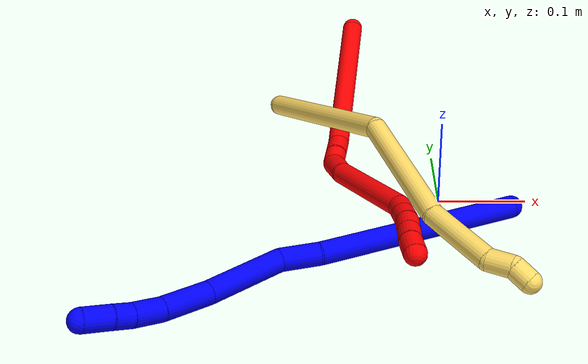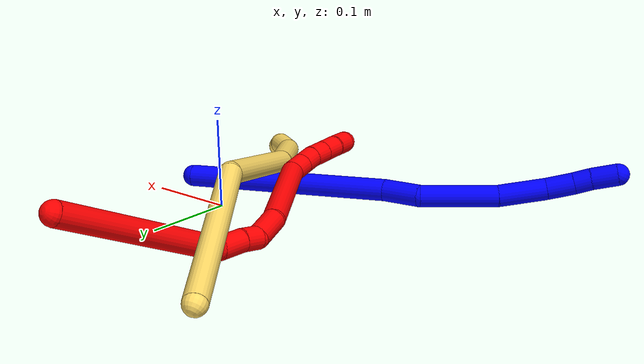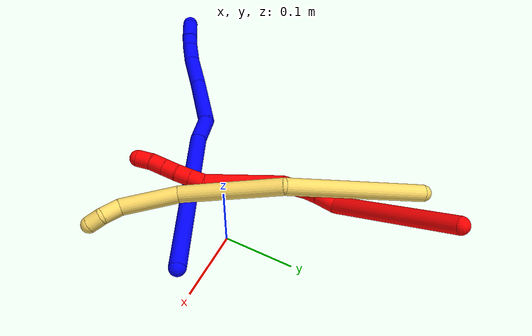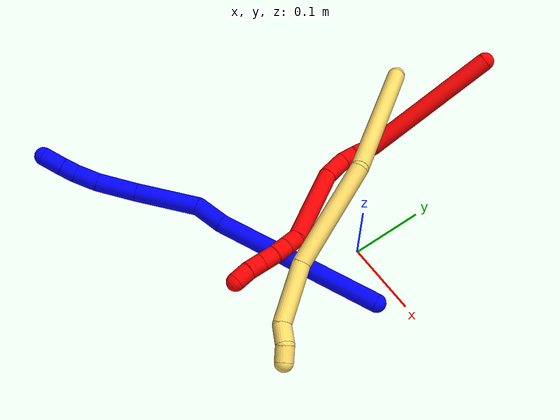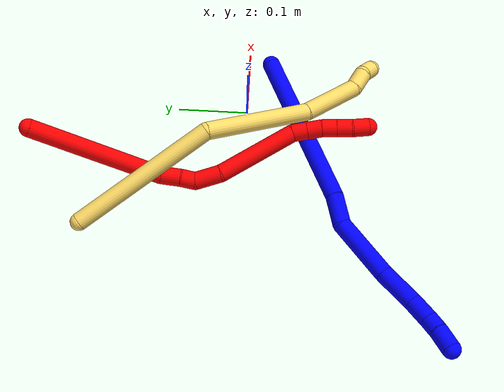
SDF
<sdf version="1.7">
 <world name="default">
  <model name="photoneo_s_sensor">
   <static>1</static>
   <pose>0 0 2 1.57079 1.57079 3.14159</pose>
   <link name="link">
    <inertial><mass>0.1</mass></inertial>
    <sensor name="sensor" type="depth">
     <update_rate>30</update_rate>
     <camera>
      <horizontal_fov>1.22</horizontal_fov>
      <image><width>1920</width><height>1200</height><format>B8G8R8</format></image>
      <clip><near>0.1</near><far>4</far></clip>
      <depth_camera><output>points</output></depth_camera>
     </camera>
     <plugin name="camera_plugin" filename="libgazebo_ros_depth_camera.so">
      <baseline>0.2</baseline>
      <alwaysOn>1</alwaysOn>
      <updateRate>0.0</updateRate>
      <cameraName>camera_ir</cameraName>
      <imageTopicName>/camera/color/image_raw</imageTopicName>
      <cameraInfoTopicName>/camera/color/camera_info</cameraInfoTopicName>
      <depthImageTopicName>/camera/depth/image_raw</depthImageTopicName>
      <depthImageCameraInfoTopicName>/camera/depth/camera_info</depthImageCameraInfoTopicName>
      <pointCloudTopicName>/camera/depth/points</pointCloudTopicName>
      <frameName>fr_optical</frameName>
      <pointCloudCutoff>0.1</pointCloudCutoff>
      <pointCloudCutoffMax>2.0</pointCloudCutoffMax>
      <distortionK1>0</distortionK1>
      <distortionK2>0</distortionK2>
      <distortionK3>0</distortionK3>
      <distortionT1>0</distortionT1>
      <distortionT2>0</distortionT2>
      <CxPrime>0</CxPrime>
      <Cx>0</Cx>
      <Cy>0</Cy>
      <focalLength>0</focalLength>
      <hackBaseline>0</hackBaseline>
     </plugin>
    </sensor>
   </link>
  </model>
  <model name="bin">
   <static>1</static>
   <link name="bottom">
    <collision name="collision-bottom">
     <pose>0 0 -0.01 0 -0 0</pose>
     <geometry><box><size>0.8 0.6 0.02</size></box></geometry>
     <surface>
      <friction><ode><mu>100</mu><mu2>100</mu2></ode></friction>
      <contact><collide_bitmask>65535</collide_bitmask></contact>
     </surface>
    </collision>
   </link>
   <link name="west_wall">
    <collision name="collision-west_wall">
     <pose>-0.41 0 0.1 0 -0 0</pose>
     <geometry><box><size>0.02 0.6 0.2</size></box></geometry>
     <surface>
      <friction><ode><mu>100</mu><mu2>100</mu2></ode></friction>
      <contact><collide_bitmask>65535</collide_bitmask></contact>
     </surface>
    </collision>
   </link>
   <link name="east_wall">
    <collision name="collision-east_wall">
     <pose>0.41 0 0.1 0 -0 0</pose>
     <geometry><box><size>0.02 0.6 0.2</size></box></geometry>
     <surface>
      <friction><ode><mu>100</mu><mu2>100</mu2></ode></friction>
      <contact><collide_bitmask>65535</collide_bitmask></contact>
     </surface>
    </collision>
   </link>
   <link name="south_wall">
    <collision name="collision-south_wall">
     <pose>0 -0.31 0.1 0 -0 0</pose>
     <geometry><box><size>0.8 0.02 0.2</size></box></geometry>
     <surface>
      <friction><ode><mu>100</mu><mu2>100</mu2></ode></friction>
      <contact><collide_bitmask>65535</collide_bitmask></contact>
     </surface>
    </collision>
   </link>
   <link name="north_wall">
    <collision name="collision-north_wall">
     <pose>0 0.31 0.1 0 -0 0</pose>
     <geometry><box><size>0.8 0.02 0.2</size></box></geometry>
     <surface>
      <friction><ode><mu>100</mu><mu2>100</mu2></ode></friction>
      <contact><collide_bitmask>65535</collide_bitmask></contact>
     </surface>
    </collision>
   </link>
  </model>
  <model name="1">
   <static>0</static>
   <link name="1">
    <collision name="collision-cylinder-e_1_1_4">
     <pose>-0.082228 -0.037469 0.073331 0.472373 -0.784665 -0.198524</pose>
     <geometry><cylinder><radius>0.0125</radius><length>0.232747</length></cylinder></geometry>
     <surface>
      <friction><ode><mu>1.16</mu><mu2>1.16</mu2><slip1>0</slip1><slip2>0</slip2></ode></friction>
      <contact><ode><kp>1e+06</kp><kd>1</kd><max_vel>0</max_vel><min_depth>0.001</min_depth></ode></contact>
     </surface>
    </collision>
    <visual name="visual-cylinder-e_1_1_4">
     <pose>-0.082228 -0.037469 0.073331 0.472373 -0.784665 -0.198524</pose>
     <geometry><cylinder><radius>0.0125</radius><length>0.232747</length></cylinder></geometry>
     <material><ambient>0 0 1 1</ambient></material>
    </visual>
    <collision name="collision-cylinder-e_2_4_5">
     <pose>-0.179664 -0.084913 0.157886 0.72654 -0.791733 -0.31511</pose>
     <geometry><cylinder><radius>0.0125</radius><length>0.042745</length></cylinder></geometry>
     <surface>
      <friction><ode><mu>1.16</mu><mu2>1.16</mu2><slip1>0</slip1><slip2>0</slip2></ode></friction>
      <contact><ode><kp>1e+06</kp><kd>1</kd><max_vel>0</max_vel><min_depth>0.001</min_depth></ode></contact>
     </surface>
    </collision>
    <visual name="visual-cylinder-e_2_4_5">
     <pose>-0.179664 -0.084913 0.157886 0.72654 -0.791733 -0.31511</pose>
     <geometry><cylinder><radius>0.0125</radius><length>0.042745</length></cylinder></geometry>
     <material><ambient>0 0 1 1</ambient></material>
    </visual>
    <collision name="collision-cylinder-e_3_5_6">
     <pose>-0.222236 -0.09992 0.20323 0.146435 -0.670713 -0.051116</pose>
     <geometry><cylinder><radius>0.0125</radius><length>0.088051</length></cylinder></geometry>
     <surface>
      <friction><ode><mu>1.16</mu><mu2>1.16</mu2><slip1>0</slip1><slip2>0</slip2></ode></friction>
      <contact><ode><kp>1e+06</kp><kd>1</kd><max_vel>0</max_vel><min_depth>0.001</min_depth></ode></contact>
     </surface>
    </collision>
    <visual name="visual-cylinder-e_3_5_6">
     <pose>-0.222236 -0.09992 0.20323 0.146435 -0.670713 -0.051116</pose>
     <geometry><cylinder><radius>0.0125</radius><length>0.088051</length></cylinder></geometry>
     <material><ambient>0 0 1 1</ambient></material>
    </visual>
    <collision name="collision-cylinder-e_4_6_7">
     <pose>-0.26871 -0.105038 0.257065 0.004344 -0.769812 -0.00176</pose>
     <geometry><cylinder><radius>0.0125</radius><length>0.054914</length></cylinder></geometry>
     <surface>
      <friction><ode><mu>1.16</mu><mu2>1.16</mu2><slip1>0</slip1><slip2>0</slip2></ode></friction>
      <contact><ode><kp>1e+06</kp><kd>1</kd><max_vel>0</max_vel><min_depth>0.001</min_depth></ode></contact>
     </surface>
    </collision>
    <visual name="visual-cylinder-e_4_6_7">
     <pose>-0.26871 -0.105038 0.257065 0.004344 -0.769812 -0.00176</pose>
     <geometry><cylinder><radius>0.0125</radius><length>0.054914</length></cylinder></geometry>
     <material><ambient>0 0 1 1</ambient></material>
    </visual>
    <collision name="collision-cylinder-e_5_7_8">
     <pose>-0.300153 -0.105564 0.286708 0.044278 -0.892513 -0.021188</pose>
     <geometry><cylinder><radius>0.0125</radius><length>0.031678</length></cylinder></geometry>
     <surface>
      <friction><ode><mu>1.16</mu><mu2>1.16</mu2><slip1>0</slip1><slip2>0</slip2></ode></friction>
      <contact><ode><kp>1e+06</kp><kd>1</kd><max_vel>0</max_vel><min_depth>0.001</min_depth></ode></contact>
     </surface>
    </collision>
    <visual name="visual-cylinder-e_5_7_8">
     <pose>-0.300153 -0.105564 0.286708 0.044278 -0.892513 -0.021188</pose>
     <geometry><cylinder><radius>0.0125</radius><length>0.031678</length></cylinder></geometry>
     <material><ambient>0 0 1 1</ambient></material>
    </visual>
    <collision name="collision-cylinder-e_6_8_9">
     <pose>-0.320886 -0.106366 0.302085 0.066419 -0.994394 -0.036053</pose>
     <geometry><cylinder><radius>0.0125</radius><length>0.020036</length></cylinder></geometry>
     <surface>
      <friction><ode><mu>1.16</mu><mu2>1.16</mu2><slip1>0</slip1><slip2>0</slip2></ode></friction>
      <contact><ode><kp>1e+06</kp><kd>1</kd><max_vel>0</max_vel><min_depth>0.001</min_depth></ode></contact>
     </surface>
    </collision>
    <visual name="visual-cylinder-e_6_8_9">
     <pose>-0.320886 -0.106366 0.302085 0.066419 -0.994394 -0.036053</pose>
     <geometry><cylinder><radius>0.0125</radius><length>0.020036</length></cylinder></geometry>
     <material><ambient>0 0 1 1</ambient></material>
    </visual>
    <collision name="collision-cylinder-e_7_9_2">
     <pose>-0.341603 -0.108738 0.315698 0.241291 -0.971853 -0.127889</pose>
     <geometry><cylinder><radius>0.0125</radius><length>0.02983</length></cylinder></geometry>
     <surface>
      <friction><ode><mu>1.16</mu><mu2>1.16</mu2><slip1>0</slip1><slip2>0</slip2></ode></friction>
      <contact><ode><kp>1e+06</kp><kd>1</kd><max_vel>0</max_vel><min_depth>0.001</min_depth></ode></contact>
     </surface>
    </collision>
    <visual name="visual-cylinder-e_7_9_2">
     <pose>-0.341603 -0.108738 0.315698 0.241291 -0.971853 -0.127889</pose>
     <geometry><cylinder><radius>0.0125</radius><length>0.02983</length></cylinder></geometry>
     <material><ambient>0 0 1 1</ambient></material>
    </visual>
    <collision name="collision-sphere-2">
     <pose>-0.353922 -0.110747 0.323862 0 -0 0</pose>
     <geometry><sphere><radius>0.0125</radius></sphere></geometry>
     <surface>
      <friction><ode><mu>1.16</mu><mu2>1.16</mu2><slip1>0</slip1><slip2>0</slip2></ode></friction>
      <contact><ode><kp>1e+06</kp><kd>1</kd><max_vel>0</max_vel><min_depth>0.001</min_depth></ode></contact>
     </surface>
    </collision>
    <visual name="visual-sphere-2">
     <pose>-0.353922 -0.110747 0.323862 0 -0 0</pose>
     <geometry><sphere><radius>0.0125</radius></sphere></geometry>
     <material><ambient>0 0 1 1</ambient></material>
    </visual>
    <collision name="collision-sphere-9">
     <pose>-0.329285 -0.106728 0.307533 0 -0 0</pose>
     <geometry><sphere><radius>0.0125</radius></sphere></geometry>
     <surface>
      <friction><ode><mu>1.16</mu><mu2>1.16</mu2><slip1>0</slip1><slip2>0</slip2></ode></friction>
      <contact><ode><kp>1e+06</kp><kd>1</kd><max_vel>0</max_vel><min_depth>0.001</min_depth></ode></contact>
     </surface>
    </collision>
    <visual name="visual-sphere-9">
     <pose>-0.329285 -0.106728 0.307533 0 -0 0</pose>
     <geometry><sphere><radius>0.0125</radius></sphere></geometry>
     <material><ambient>0 0 1 1</ambient></material>
    </visual>
    <collision name="collision-sphere-4">
     <pose>-0.164456 -0.074938 0.146662 0 -0 0</pose>
     <geometry><sphere><radius>0.0125</radius></sphere></geometry>
     <surface>
      <friction><ode><mu>1.16</mu><mu2>1.16</mu2><slip1>0</slip1><slip2>0</slip2></ode></friction>
      <contact><ode><kp>1e+06</kp><kd>1</kd><max_vel>0</max_vel><min_depth>0.001</min_depth></ode></contact>
     </surface>
    </collision>
    <visual name="visual-sphere-4">
     <pose>-0.164456 -0.074938 0.146662 0 -0 0</pose>
     <geometry><sphere><radius>0.0125</radius></sphere></geometry>
     <material><ambient>0 0 1 1</ambient></material>
    </visual>
    <collision name="collision-sphere-1">
     <geometry><sphere><radius>0.0125</radius></sphere></geometry>
     <surface>
      <friction><ode><mu>1.16</mu><mu2>1.16</mu2><slip1>0</slip1><slip2>0</slip2></ode></friction>
      <contact><ode><kp>1e+06</kp><kd>1</kd><max_vel>0</max_vel><min_depth>0.001</min_depth></ode></contact>
     </surface>
    </collision>
    <visual name="visual-sphere-1">
     <geometry><sphere><radius>0.0125</radius></sphere></geometry>
     <material><ambient>0 0 1 1</ambient></material>
    </visual>
    <collision name="collision-sphere-8">
     <pose>-0.312486 -0.106004 0.296637 0 -0 0</pose>
     <geometry><sphere><radius>0.0125</radius></sphere></geometry>
     <surface>
      <friction><ode><mu>1.16</mu><mu2>1.16</mu2><slip1>0</slip1><slip2>0</slip2></ode></friction>
      <contact><ode><kp>1e+06</kp><kd>1</kd><max_vel>0</max_vel><min_depth>0.001</min_depth></ode></contact>
     </surface>
    </collision>
    <visual name="visual-sphere-8">
     <pose>-0.312486 -0.106004 0.296637 0 -0 0</pose>
     <geometry><sphere><radius>0.0125</radius></sphere></geometry>
     <material><ambient>0 0 1 1</ambient></material>
    </visual>
    <collision name="collision-sphere-5">
     <pose>-0.194872 -0.094888 0.169111 0 -0 0</pose>
     <geometry><sphere><radius>0.0125</radius></sphere></geometry>
     <surface>
      <friction><ode><mu>1.16</mu><mu2>1.16</mu2><slip1>0</slip1><slip2>0</slip2></ode></friction>
      <contact><ode><kp>1e+06</kp><kd>1</kd><max_vel>0</max_vel><min_depth>0.001</min_depth></ode></contact>
     </surface>
    </collision>
    <visual name="visual-sphere-5">
     <pose>-0.194872 -0.094888 0.169111 0 -0 0</pose>
     <geometry><sphere><radius>0.0125</radius></sphere></geometry>
     <material><ambient>0 0 1 1</ambient></material>
    </visual>
    <collision name="collision-sphere-6">
     <pose>-0.2496 -0.104953 0.23735 0 -0 0</pose>
     <geometry><sphere><radius>0.0125</radius></sphere></geometry>
     <surface>
      <friction><ode><mu>1.16</mu><mu2>1.16</mu2><slip1>0</slip1><slip2>0</slip2></ode></friction>
      <contact><ode><kp>1e+06</kp><kd>1</kd><max_vel>0</max_vel><min_depth>0.001</min_depth></ode></contact>
     </surface>
    </collision>
    <visual name="visual-sphere-6">
     <pose>-0.2496 -0.104953 0.23735 0 -0 0</pose>
     <geometry><sphere><radius>0.0125</radius></sphere></geometry>
     <material><ambient>0 0 1 1</ambient></material>
    </visual>
    <collision name="collision-sphere-7">
     <pose>-0.28782 -0.105124 0.27678 0 -0 0</pose>
     <geometry><sphere><radius>0.0125</radius></sphere></geometry>
     <surface>
      <friction><ode><mu>1.16</mu><mu2>1.16</mu2><slip1>0</slip1><slip2>0</slip2></ode></friction>
      <contact><ode><kp>1e+06</kp><kd>1</kd><max_vel>0</max_vel><min_depth>0.001</min_depth></ode></contact>
     </surface>
    </collision>
    <visual name="visual-sphere-7">
     <pose>-0.28782 -0.105124 0.27678 0 -0 0</pose>
     <geometry><sphere><radius>0.0125</radius></sphere></geometry>
     <material><ambient>0 0 1 1</ambient></material>
    </visual>
    <inertial>
     <pose>-0.174539 -0.07127 0.160759 0 -0 0</pose>
     <mass>0.5</mass>
     <inertia>
      <ixx>0.000624</ixx>
      <ixy>0</ixy>
      <ixz>0</ixz>
      <iyy>0.000923</iyy>
      <iyz>0</iyz>
      <izz>0.001188</izz>
     </inertia>
    </inertial>
   </link>
   <pose>0.078316 -0.031226 0.012327 2.28516 0.752922 0.153311</pose>
  </model>
  <model name="2">
   <static>0</static>
   <link name="2">
    <collision name="collision-cylinder-e_1_1_4">
     <pose>-0.009499 -0.002422 -0.095594 3.11626 -0.099008 -2.64094</pose>
     <geometry><cylinder><radius>0.0125</radius><length>0.19219</length></cylinder></geometry>
     <surface>
      <friction><ode><mu>1.16</mu><mu2>1.16</mu2><slip1>0</slip1><slip2>0</slip2></ode></friction>
      <contact><ode><kp>1e+06</kp><kd>1</kd><max_vel>0</max_vel><min_depth>0.001</min_depth></ode></contact>
     </surface>
    </collision>
    <visual name="visual-cylinder-e_1_1_4">
     <pose>-0.009499 -0.002422 -0.095594 3.11626 -0.099008 -2.64094</pose>
     <geometry><cylinder><radius>0.0125</radius><length>0.19219</length></cylinder></geometry>
     <material><ambient>1 0 0 1</ambient></material>
    </visual>
    <collision name="collision-cylinder-e_2_4_5">
     <pose>-0.021344 -0.011562 -0.203692 2.64867 -0.16385 -0.630951</pose>
     <geometry><cylinder><radius>0.0125</radius><length>0.028776</length></cylinder></geometry>
     <surface>
      <friction><ode><mu>1.16</mu><mu2>1.16</mu2><slip1>0</slip1><slip2>0</slip2></ode></friction>
      <contact><ode><kp>1e+06</kp><kd>1</kd><max_vel>0</max_vel><min_depth>0.001</min_depth></ode></contact>
     </surface>
    </collision>
    <visual name="visual-cylinder-e_2_4_5">
     <pose>-0.021344 -0.011562 -0.203692 2.64867 -0.16385 -0.630951</pose>
     <geometry><cylinder><radius>0.0125</radius><length>0.028776</length></cylinder></geometry>
     <material><ambient>1 0 0 1</ambient></material>
    </visual>
    <collision name="collision-cylinder-e_3_5_6">
     <pose>-0.025397 -0.021616 -0.225569 2.79949 -0.169842 -0.915746</pose>
     <geometry><cylinder><radius>0.0125</radius><length>0.020187</length></cylinder></geometry>
     <surface>
      <friction><ode><mu>1.16</mu><mu2>1.16</mu2><slip1>0</slip1><slip2>0</slip2></ode></friction>
      <contact><ode><kp>1e+06</kp><kd>1</kd><max_vel>0</max_vel><min_depth>0.001</min_depth></ode></contact>
     </surface>
    </collision>
    <visual name="visual-cylinder-e_3_5_6">
     <pose>-0.025397 -0.021616 -0.225569 2.79949 -0.169842 -0.915746</pose>
     <geometry><cylinder><radius>0.0125</radius><length>0.020187</length></cylinder></geometry>
     <material><ambient>1 0 0 1</ambient></material>
    </visual>
    <collision name="collision-cylinder-e_4_6_7">
     <pose>-0.023405 -0.03679 -0.248853 2.43663 0.19977 0.531987</pose>
     <geometry><cylinder><radius>0.0125</radius><length>0.037274</length></cylinder></geometry>
     <surface>
      <friction><ode><mu>1.16</mu><mu2>1.16</mu2><slip1>0</slip1><slip2>0</slip2></ode></friction>
      <contact><ode><kp>1e+06</kp><kd>1</kd><max_vel>0</max_vel><min_depth>0.001</min_depth></ode></contact>
     </surface>
    </collision>
    <visual name="visual-cylinder-e_4_6_7">
     <pose>-0.023405 -0.03679 -0.248853 2.43663 0.19977 0.531987</pose>
     <geometry><cylinder><radius>0.0125</radius><length>0.037274</length></cylinder></geometry>
     <material><ambient>1 0 0 1</ambient></material>
    </visual>
    <collision name="collision-cylinder-e_5_7_8">
     <pose>0.007134 -0.081395 -0.302058 2.44649 0.483146 1.19454</pose>
     <geometry><cylinder><radius>0.0125</radius><length>0.115553</length></cylinder></geometry>
     <surface>
      <friction><ode><mu>1.16</mu><mu2>1.16</mu2><slip1>0</slip1><slip2>0</slip2></ode></friction>
      <contact><ode><kp>1e+06</kp><kd>1</kd><max_vel>0</max_vel><min_depth>0.001</min_depth></ode></contact>
     </surface>
    </collision>
    <visual name="visual-cylinder-e_5_7_8">
     <pose>0.007134 -0.081395 -0.302058 2.44649 0.483146 1.19454</pose>
     <geometry><cylinder><radius>0.0125</radius><length>0.115553</length></cylinder></geometry>
     <material><ambient>1 0 0 1</ambient></material>
    </visual>
    <collision name="collision-cylinder-e_6_8_9">
     <pose>0.034811 -0.120569 -0.349664 2.48506 0.079397 0.232191</pose>
     <geometry><cylinder><radius>0.0125</radius><length>0.021057</length></cylinder></geometry>
     <surface>
      <friction><ode><mu>1.16</mu><mu2>1.16</mu2><slip1>0</slip1><slip2>0</slip2></ode></friction>
      <contact><ode><kp>1e+06</kp><kd>1</kd><max_vel>0</max_vel><min_depth>0.001</min_depth></ode></contact>
     </surface>
    </collision>
    <visual name="visual-cylinder-e_6_8_9">
     <pose>0.034811 -0.120569 -0.349664 2.48506 0.079397 0.232191</pose>
     <geometry><cylinder><radius>0.0125</radius><length>0.021057</length></cylinder></geometry>
     <material><ambient>1 0 0 1</ambient></material>
    </visual>
    <collision name="collision-cylinder-e_7_9_10">
     <pose>0.036464 -0.133253 -0.366084 2.48267 0.079613 0.231917</pose>
     <geometry><cylinder><radius>0.0125</radius><length>0.020572</length></cylinder></geometry>
     <surface>
      <friction><ode><mu>1.16</mu><mu2>1.16</mu2><slip1>0</slip1><slip2>0</slip2></ode></friction>
      <contact><ode><kp>1e+06</kp><kd>1</kd><max_vel>0</max_vel><min_depth>0.001</min_depth></ode></contact>
     </surface>
    </collision>
    <visual name="visual-cylinder-e_7_9_10">
     <pose>0.036464 -0.133253 -0.366084 2.48267 0.079613 0.231917</pose>
     <geometry><cylinder><radius>0.0125</radius><length>0.020572</length></cylinder></geometry>
     <material><ambient>1 0 0 1</ambient></material>
    </visual>
    <collision name="collision-cylinder-e_8_10_11">
     <pose>0.036832 -0.144894 -0.382982 2.5938 -0.043641 -0.155042</pose>
     <geometry><cylinder><radius>0.0125</radius><length>0.020615</length></cylinder></geometry>
     <surface>
      <friction><ode><mu>1.16</mu><mu2>1.16</mu2><slip1>0</slip1><slip2>0</slip2></ode></friction>
      <contact><ode><kp>1e+06</kp><kd>1</kd><max_vel>0</max_vel><min_depth>0.001</min_depth></ode></contact>
     </surface>
    </collision>
    <visual name="visual-cylinder-e_8_10_11">
     <pose>0.036832 -0.144894 -0.382982 2.5938 -0.043641 -0.155042</pose>
     <geometry><cylinder><radius>0.0125</radius><length>0.020615</length></cylinder></geometry>
     <material><ambient>1 0 0 1</ambient></material>
    </visual>
    <collision name="collision-cylinder-e_9_11_12">
     <pose>0.035981 -0.155892 -0.400851 2.58606 -0.03751 -0.131375</pose>
     <geometry><cylinder><radius>0.0125</radius><length>0.021386</length></cylinder></geometry>
     <surface>
      <friction><ode><mu>1.16</mu><mu2>1.16</mu2><slip1>0</slip1><slip2>0</slip2></ode></friction>
      <contact><ode><kp>1e+06</kp><kd>1</kd><max_vel>0</max_vel><min_depth>0.001</min_depth></ode></contact>
     </surface>
    </collision>
    <visual name="visual-cylinder-e_9_11_12">
     <pose>0.035981 -0.155892 -0.400851 2.58606 -0.03751 -0.131375</pose>
     <geometry><cylinder><radius>0.0125</radius><length>0.021386</length></cylinder></geometry>
     <material><ambient>1 0 0 1</ambient></material>
    </visual>
    <collision name="collision-cylinder-e_10_12_2">
     <pose>0.036667 -0.166573 -0.419865 2.67174 0.097264 0.401224</pose>
     <geometry><cylinder><radius>0.0125</radius><length>0.022392</length></cylinder></geometry>
     <surface>
      <friction><ode><mu>1.16</mu><mu2>1.16</mu2><slip1>0</slip1><slip2>0</slip2></ode></friction>
      <contact><ode><kp>1e+06</kp><kd>1</kd><max_vel>0</max_vel><min_depth>0.001</min_depth></ode></contact>
     </surface>
    </collision>
    <visual name="visual-cylinder-e_10_12_2">
     <pose>0.036667 -0.166573 -0.419865 2.67174 0.097264 0.401224</pose>
     <geometry><cylinder><radius>0.0125</radius><length>0.022392</length></cylinder></geometry>
     <material><ambient>1 0 0 1</ambient></material>
    </visual>
    <collision name="collision-sphere-2">
     <pose>0.037755 -0.171618 -0.429801 0 -0 0</pose>
     <geometry><sphere><radius>0.0125</radius></sphere></geometry>
     <surface>
      <friction><ode><mu>1.16</mu><mu2>1.16</mu2><slip1>0</slip1><slip2>0</slip2></ode></friction>
      <contact><ode><kp>1e+06</kp><kd>1</kd><max_vel>0</max_vel><min_depth>0.001</min_depth></ode></contact>
     </surface>
    </collision>
    <visual name="visual-sphere-2">
     <pose>0.037755 -0.171618 -0.429801 0 -0 0</pose>
     <geometry><sphere><radius>0.0125</radius></sphere></geometry>
     <material><ambient>1 0 0 1</ambient></material>
    </visual>
    <collision name="collision-sphere-12">
     <pose>0.03558 -0.161528 -0.40993 0 -0 0</pose>
     <geometry><sphere><radius>0.0125</radius></sphere></geometry>
     <surface>
      <friction><ode><mu>1.16</mu><mu2>1.16</mu2><slip1>0</slip1><slip2>0</slip2></ode></friction>
      <contact><ode><kp>1e+06</kp><kd>1</kd><max_vel>0</max_vel><min_depth>0.001</min_depth></ode></contact>
     </surface>
    </collision>
    <visual name="visual-sphere-12">
     <pose>0.03558 -0.161528 -0.40993 0 -0 0</pose>
     <geometry><sphere><radius>0.0125</radius></sphere></geometry>
     <material><ambient>1 0 0 1</ambient></material>
    </visual>
    <collision name="collision-sphere-11">
     <pose>0.036382 -0.150257 -0.391772 0 -0 0</pose>
     <geometry><sphere><radius>0.0125</radius></sphere></geometry>
     <surface>
      <friction><ode><mu>1.16</mu><mu2>1.16</mu2><slip1>0</slip1><slip2>0</slip2></ode></friction>
      <contact><ode><kp>1e+06</kp><kd>1</kd><max_vel>0</max_vel><min_depth>0.001</min_depth></ode></contact>
     </surface>
    </collision>
    <visual name="visual-sphere-11">
     <pose>0.036382 -0.150257 -0.391772 0 -0 0</pose>
     <geometry><sphere><radius>0.0125</radius></sphere></geometry>
     <material><ambient>1 0 0 1</ambient></material>
    </visual>
    <collision name="collision-sphere-10">
     <pose>0.037282 -0.139531 -0.374191 0 -0 0</pose>
     <geometry><sphere><radius>0.0125</radius></sphere></geometry>
     <surface>
      <friction><ode><mu>1.16</mu><mu2>1.16</mu2><slip1>0</slip1><slip2>0</slip2></ode></friction>
      <contact><ode><kp>1e+06</kp><kd>1</kd><max_vel>0</max_vel><min_depth>0.001</min_depth></ode></contact>
     </surface>
    </collision>
    <visual name="visual-sphere-10">
     <pose>0.037282 -0.139531 -0.374191 0 -0 0</pose>
     <geometry><sphere><radius>0.0125</radius></sphere></geometry>
     <material><ambient>1 0 0 1</ambient></material>
    </visual>
    <collision name="collision-sphere-9">
     <pose>0.035646 -0.126975 -0.357977 0 -0 0</pose>
     <geometry><sphere><radius>0.0125</radius></sphere></geometry>
     <surface>
      <friction><ode><mu>1.16</mu><mu2>1.16</mu2><slip1>0</slip1><slip2>0</slip2></ode></friction>
      <contact><ode><kp>1e+06</kp><kd>1</kd><max_vel>0</max_vel><min_depth>0.001</min_depth></ode></contact>
     </surface>
    </collision>
    <visual name="visual-sphere-9">
     <pose>0.035646 -0.126975 -0.357977 0 -0 0</pose>
     <geometry><sphere><radius>0.0125</radius></sphere></geometry>
     <material><ambient>1 0 0 1</ambient></material>
    </visual>
    <collision name="collision-sphere-4">
     <pose>-0.018997 -0.004845 -0.191187 0 -0 0</pose>
     <geometry><sphere><radius>0.0125</radius></sphere></geometry>
     <surface>
      <friction><ode><mu>1.16</mu><mu2>1.16</mu2><slip1>0</slip1><slip2>0</slip2></ode></friction>
      <contact><ode><kp>1e+06</kp><kd>1</kd><max_vel>0</max_vel><min_depth>0.001</min_depth></ode></contact>
     </surface>
    </collision>
    <visual name="visual-sphere-4">
     <pose>-0.018997 -0.004845 -0.191187 0 -0 0</pose>
     <geometry><sphere><radius>0.0125</radius></sphere></geometry>
     <material><ambient>1 0 0 1</ambient></material>
    </visual>
    <collision name="collision-sphere-1">
     <geometry><sphere><radius>0.0125</radius></sphere></geometry>
     <surface>
      <friction><ode><mu>1.16</mu><mu2>1.16</mu2><slip1>0</slip1><slip2>0</slip2></ode></friction>
      <contact><ode><kp>1e+06</kp><kd>1</kd><max_vel>0</max_vel><min_depth>0.001</min_depth></ode></contact>
     </surface>
    </collision>
    <visual name="visual-sphere-1">
     <geometry><sphere><radius>0.0125</radius></sphere></geometry>
     <material><ambient>1 0 0 1</ambient></material>
    </visual>
    <collision name="collision-sphere-8">
     <pose>0.033975 -0.114163 -0.341351 0 -0 0</pose>
     <geometry><sphere><radius>0.0125</radius></sphere></geometry>
     <surface>
      <friction><ode><mu>1.16</mu><mu2>1.16</mu2><slip1>0</slip1><slip2>0</slip2></ode></friction>
      <contact><ode><kp>1e+06</kp><kd>1</kd><max_vel>0</max_vel><min_depth>0.001</min_depth></ode></contact>
     </surface>
    </collision>
    <visual name="visual-sphere-8">
     <pose>0.033975 -0.114163 -0.341351 0 -0 0</pose>
     <geometry><sphere><radius>0.0125</radius></sphere></geometry>
     <material><ambient>1 0 0 1</ambient></material>
    </visual>
    <collision name="collision-sphere-5">
     <pose>-0.023691 -0.018279 -0.216198 0 -0 0</pose>
     <geometry><sphere><radius>0.0125</radius></sphere></geometry>
     <surface>
      <friction><ode><mu>1.16</mu><mu2>1.16</mu2><slip1>0</slip1><slip2>0</slip2></ode></friction>
      <contact><ode><kp>1e+06</kp><kd>1</kd><max_vel>0</max_vel><min_depth>0.001</min_depth></ode></contact>
     </surface>
    </collision>
    <visual name="visual-sphere-5">
     <pose>-0.023691 -0.018279 -0.216198 0 -0 0</pose>
     <geometry><sphere><radius>0.0125</radius></sphere></geometry>
     <material><ambient>1 0 0 1</ambient></material>
    </visual>
    <collision name="collision-sphere-6">
     <pose>-0.027103 -0.024954 -0.234941 0 -0 0</pose>
     <geometry><sphere><radius>0.0125</radius></sphere></geometry>
     <surface>
      <friction><ode><mu>1.16</mu><mu2>1.16</mu2><slip1>0</slip1><slip2>0</slip2></ode></friction>
      <contact><ode><kp>1e+06</kp><kd>1</kd><max_vel>0</max_vel><min_depth>0.001</min_depth></ode></contact>
     </surface>
    </collision>
    <visual name="visual-sphere-6">
     <pose>-0.027103 -0.024954 -0.234941 0 -0 0</pose>
     <geometry><sphere><radius>0.0125</radius></sphere></geometry>
     <material><ambient>1 0 0 1</ambient></material>
    </visual>
    <collision name="collision-sphere-7">
     <pose>-0.019707 -0.048627 -0.262765 0 -0 0</pose>
     <geometry><sphere><radius>0.0125</radius></sphere></geometry>
     <surface>
      <friction><ode><mu>1.16</mu><mu2>1.16</mu2><slip1>0</slip1><slip2>0</slip2></ode></friction>
      <contact><ode><kp>1e+06</kp><kd>1</kd><max_vel>0</max_vel><min_depth>0.001</min_depth></ode></contact>
     </surface>
    </collision>
    <visual name="visual-sphere-7">
     <pose>-0.019707 -0.048627 -0.262765 0 -0 0</pose>
     <geometry><sphere><radius>0.0125</radius></sphere></geometry>
     <material><ambient>1 0 0 1</ambient></material>
    </visual>
    <inertial>
     <pose>0.001665 -0.054684 -0.227459 0 -0 0</pose>
     <mass>0.5</mass>
     <inertia>
      <ixx>-0.000636</ixx>
      <ixy>0</ixy>
      <ixz>0</ixz>
      <iyy>0.000324</iyy>
      <iyz>0</iyz>
      <izz>6.4e-05</izz>
     </inertia>
    </inertial>
   </link>
   <pose>-0.096047 0.288186 0.095536 -1.08545 0.109441 0.055014</pose>
  </model>
  <model name="5">
   <static>0</static>
   <link name="5">
    <collision name="collision-cylinder-e_1_1_4">
     <pose>0.012147 -0.051137 -0.092261 2.63548 0.11465 0.436754</pose>
     <geometry><cylinder><radius>0.0125</radius><length>0.212364</length></cylinder></geometry>
     <surface>
      <friction><ode><mu>1.16</mu><mu2>1.16</mu2><slip1>0</slip1><slip2>0</slip2></ode></friction>
      <contact><ode><kp>1e+06</kp><kd>1</kd><max_vel>0</max_vel><min_depth>0.001</min_depth></ode></contact>
     </surface>
    </collision>
    <visual name="visual-cylinder-e_1_1_4">
     <pose>0.012147 -0.051137 -0.092261 2.63548 0.11465 0.436754</pose>
     <geometry><cylinder><radius>0.0125</radius><length>0.212364</length></cylinder></geometry>
     <material><ambient>1 0.858824 0.4 1</ambient></material>
    </visual>
    <collision name="collision-cylinder-e_2_4_5">
     <pose>0.067624 -0.142627 -0.232652 2.44388 0.603901 1.41631</pose>
     <geometry><cylinder><radius>0.0125</radius><length>0.152609</length></cylinder></geometry>
     <surface>
      <friction><ode><mu>1.16</mu><mu2>1.16</mu2><slip1>0</slip1><slip2>0</slip2></ode></friction>
      <contact><ode><kp>1e+06</kp><kd>1</kd><max_vel>0</max_vel><min_depth>0.001</min_depth></ode></contact>
     </surface>
    </collision>
    <visual name="visual-cylinder-e_2_4_5">
     <pose>0.067624 -0.142627 -0.232652 2.44388 0.603901 1.41631</pose>
     <geometry><cylinder><radius>0.0125</radius><length>0.152609</length></cylinder></geometry>
     <material><ambient>1 0.858824 0.4 1</ambient></material>
    </visual>
    <collision name="collision-cylinder-e_3_5_6">
     <pose>0.12618 -0.211886 -0.308263 2.33092 0.364667 0.811683</pose>
     <geometry><cylinder><radius>0.0125</radius><length>0.085382</length></cylinder></geometry>
     <surface>
      <friction><ode><mu>1.16</mu><mu2>1.16</mu2><slip1>0</slip1><slip2>0</slip2></ode></friction>
      <contact><ode><kp>1e+06</kp><kd>1</kd><max_vel>0</max_vel><min_depth>0.001</min_depth></ode></contact>
     </surface>
    </collision>
    <visual name="visual-cylinder-e_3_5_6">
     <pose>0.12618 -0.211886 -0.308263 2.33092 0.364667 0.811683</pose>
     <geometry><cylinder><radius>0.0125</radius><length>0.085382</length></cylinder></geometry>
     <material><ambient>1 0.858824 0.4 1</ambient></material>
    </visual>
    <collision name="collision-cylinder-e_4_6_7">
     <pose>0.140638 -0.252564 -0.343368 2.14552 -0.054642 -0.10043</pose>
     <geometry><cylinder><radius>0.0125</radius><length>0.028095</length></cylinder></geometry>
     <surface>
      <friction><ode><mu>1.16</mu><mu2>1.16</mu2><slip1>0</slip1><slip2>0</slip2></ode></friction>
      <contact><ode><kp>1e+06</kp><kd>1</kd><max_vel>0</max_vel><min_depth>0.001</min_depth></ode></contact>
     </surface>
    </collision>
    <visual name="visual-cylinder-e_4_6_7">
     <pose>0.140638 -0.252564 -0.343368 2.14552 -0.054642 -0.10043</pose>
     <geometry><cylinder><radius>0.0125</radius><length>0.028095</length></cylinder></geometry>
     <material><ambient>1 0.858824 0.4 1</ambient></material>
    </visual>
    <collision name="collision-cylinder-e_5_7_2">
     <pose>0.143838 -0.273716 -0.354515 1.92998 0.377058 0.537545</pose>
     <geometry><cylinder><radius>0.0125</radius><length>0.02155</length></cylinder></geometry>
     <surface>
      <friction><ode><mu>1.16</mu><mu2>1.16</mu2><slip1>0</slip1><slip2>0</slip2></ode></friction>
      <contact><ode><kp>1e+06</kp><kd>1</kd><max_vel>0</max_vel><min_depth>0.001</min_depth></ode></contact>
     </surface>
    </collision>
    <visual name="visual-cylinder-e_5_7_2">
     <pose>0.143838 -0.273716 -0.354515 1.92998 0.377058 0.537545</pose>
     <geometry><cylinder><radius>0.0125</radius><length>0.02155</length></cylinder></geometry>
     <material><ambient>1 0.858824 0.4 1</ambient></material>
    </visual>
    <collision name="collision-sphere-2">
     <pose>0.147805 -0.283095 -0.358036 0 -0 0</pose>
     <geometry><sphere><radius>0.0125</radius></sphere></geometry>
     <surface>
      <friction><ode><mu>1.16</mu><mu2>1.16</mu2><slip1>0</slip1><slip2>0</slip2></ode></friction>
      <contact><ode><kp>1e+06</kp><kd>1</kd><max_vel>0</max_vel><min_depth>0.001</min_depth></ode></contact>
     </surface>
    </collision>
    <visual name="visual-sphere-2">
     <pose>0.147805 -0.283095 -0.358036 0 -0 0</pose>
     <geometry><sphere><radius>0.0125</radius></sphere></geometry>
     <material><ambient>1 0.858824 0.4 1</ambient></material>
    </visual>
    <collision name="collision-sphere-7">
     <pose>0.139871 -0.264337 -0.350993 0 -0 0</pose>
     <geometry><sphere><radius>0.0125</radius></sphere></geometry>
     <surface>
      <friction><ode><mu>1.16</mu><mu2>1.16</mu2><slip1>0</slip1><slip2>0</slip2></ode></friction>
      <contact><ode><kp>1e+06</kp><kd>1</kd><max_vel>0</max_vel><min_depth>0.001</min_depth></ode></contact>
     </surface>
    </collision>
    <visual name="visual-sphere-7">
     <pose>0.139871 -0.264337 -0.350993 0 -0 0</pose>
     <geometry><sphere><radius>0.0125</radius></sphere></geometry>
     <material><ambient>1 0.858824 0.4 1</ambient></material>
    </visual>
    <collision name="collision-sphere-6">
     <pose>0.141405 -0.240791 -0.335744 0 -0 0</pose>
     <geometry><sphere><radius>0.0125</radius></sphere></geometry>
     <surface>
      <friction><ode><mu>1.16</mu><mu2>1.16</mu2><slip1>0</slip1><slip2>0</slip2></ode></friction>
      <contact><ode><kp>1e+06</kp><kd>1</kd><max_vel>0</max_vel><min_depth>0.001</min_depth></ode></contact>
     </surface>
    </collision>
    <visual name="visual-sphere-6">
     <pose>0.141405 -0.240791 -0.335744 0 -0 0</pose>
     <geometry><sphere><radius>0.0125</radius></sphere></geometry>
     <material><ambient>1 0.858824 0.4 1</ambient></material>
    </visual>
    <collision name="collision-sphere-5">
     <pose>0.110955 -0.18298 -0.280783 0 -0 0</pose>
     <geometry><sphere><radius>0.0125</radius></sphere></geometry>
     <surface>
      <friction><ode><mu>1.16</mu><mu2>1.16</mu2><slip1>0</slip1><slip2>0</slip2></ode></friction>
      <contact><ode><kp>1e+06</kp><kd>1</kd><max_vel>0</max_vel><min_depth>0.001</min_depth></ode></contact>
     </surface>
    </collision>
    <visual name="visual-sphere-5">
     <pose>0.110955 -0.18298 -0.280783 0 -0 0</pose>
     <geometry><sphere><radius>0.0125</radius></sphere></geometry>
     <material><ambient>1 0.858824 0.4 1</ambient></material>
    </visual>
    <collision name="collision-sphere-1">
     <geometry><sphere><radius>0.0125</radius></sphere></geometry>
     <surface>
      <friction><ode><mu>1.16</mu><mu2>1.16</mu2><slip1>0</slip1><slip2>0</slip2></ode></friction>
      <contact><ode><kp>1e+06</kp><kd>1</kd><max_vel>0</max_vel><min_depth>0.001</min_depth></ode></contact>
     </surface>
    </collision>
    <visual name="visual-sphere-1">
     <geometry><sphere><radius>0.0125</radius></sphere></geometry>
     <material><ambient>1 0.858824 0.4 1</ambient></material>
    </visual>
    <collision name="collision-sphere-4">
     <pose>0.024294 -0.102275 -0.184522 0 -0 0</pose>
     <geometry><sphere><radius>0.0125</radius></sphere></geometry>
     <surface>
      <friction><ode><mu>1.16</mu><mu2>1.16</mu2><slip1>0</slip1><slip2>0</slip2></ode></friction>
      <contact><ode><kp>1e+06</kp><kd>1</kd><max_vel>0</max_vel><min_depth>0.001</min_depth></ode></contact>
     </surface>
    </collision>
    <visual name="visual-sphere-4">
     <pose>0.024294 -0.102275 -0.184522 0 -0 0</pose>
     <geometry><sphere><radius>0.0125</radius></sphere></geometry>
     <material><ambient>1 0.858824 0.4 1</ambient></material>
    </visual>
    <inertial>
     <pose>0.061448 -0.127423 -0.197409 0 -0 0</pose>
     <mass>0.5</mass>
     <inertia>
      <ixx>0.001438</ixx>
      <ixy>0</ixy>
      <ixz>0</ixz>
      <iyy>3.6e-05</iyy>
      <iyz>0</iyz>
      <izz>0.000278</izz>
     </inertia>
    </inertial>
   </link>
   <pose>-0.192245 0.220056 0.013731 2.52313 0.705924 -2.12777</pose>
  </model>
 </world>
</sdf>
